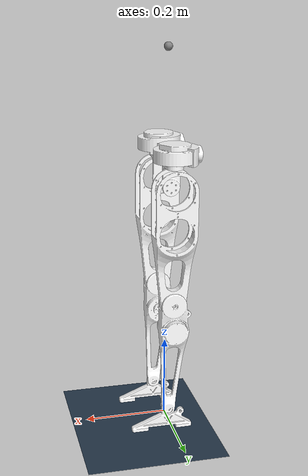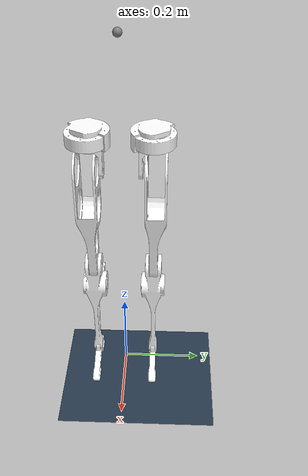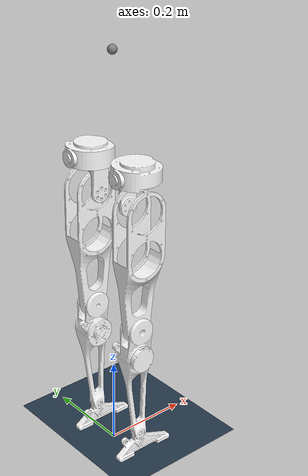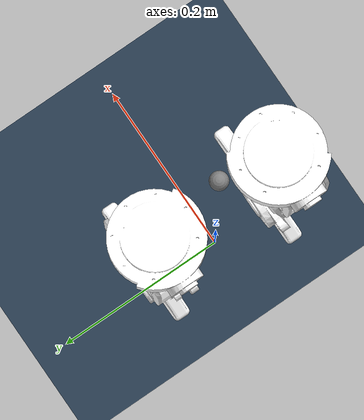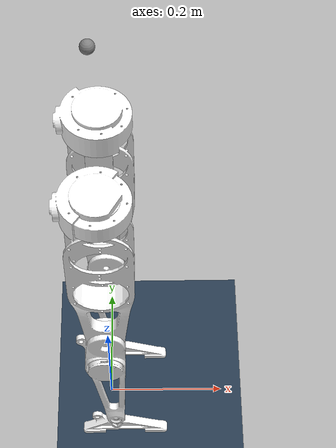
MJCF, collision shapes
<mujoco model="wow">
    <compiler angle="radian" meshdir="../meshes_obj/" eulerseq="zyx"/>
    <option timestep='0.001' iterations='50' solver='PGS' gravity='0 0 -9.81'>
    <flag sensornoise="enable" frictionloss="enable"/>
    </option>
    <size njmax="500" nconmax="100" />

    <visual>
        <quality shadowsize='4096'/>
        <map znear='0.05'/>
    </visual>

        <default>
        <joint limited='true'/>
        <motor ctrllimited='true'/>
        <geom  condim='4' contype="1" conaffinity="15" solref='0.001 2' friction='0.9 0.2 0.2'/>
        <equality solref='0.001 2'/>
        <default class='visualgeom'>
            <geom material='visualgeom' condim='1' contype='0' conaffinity='0'/>
        </default>
        <default class='visualgeom2'>
            <geom material='visualgeom2' condim='1' contype='0' conaffinity='0'/>
        </default>
        <default class='obstacle'>
            <geom material='obstacle' condim='3' contype='1' conaffinity='15'/>
        </default>

        <default class='leg_joint_param'>
            <joint  damping="0.01" frictionloss="0.01" armature="0.01"/>
        </default>

    </default>

    <asset>

        <texture type="skybox" builtin="gradient" rgb1="0.3 0.5 0.7" rgb2="0 0 0" width="512" height="512"/>
        <texture name="texplane" type="2d" builtin="checker" rgb1=".2 .3 .4" rgb2=".1 0.15 0.2"
            width="512" height="512" mark="cross" markrgb=".8 .8 .8"/>
        <texture name="texplane2" type="2d" builtin="checker" rgb1="1 0.3137 0.1843" rgb2="0.0 0.30196 0.38039"
            width="512" height="512" mark="cross" markrgb=".8 .8 .8"/>

        <material name="matplane" reflectance="0." texture="texplane" texrepeat="1 1" texuniform="true"/>
        <material name="matplane2" reflectance="0.1" texture="texplane2" texrepeat="1 1" texuniform="true"/>

        <material name='obstacle'  rgba='0.9 0.6 0.2 1'/>
        <material name='visualgeom'  rgba='0.5 0.9 0.2 1'/>
        <material name='visualgeom2'  rgba='0.5 0.9 0.2 1'/>

        <mesh name="body" file="body.obj" />
        <mesh name="left_roll_Link" file="left_roll_Link.obj" />
        <mesh name="left_yaw_Link" file="left_yaw_Link.obj" />
        <mesh name="left_pitch_Link" file="left_pitch_Link.obj" />
        <mesh name="left_knee_Link" file="left_knee_Link.obj" />
        <mesh name="left_foot_Link" file="left_foot_Link.obj" />
        <mesh name="right_roll_Link" file="right_roll_Link.obj" />
        <mesh name="right_yaw_Link" file="right_yaw_Link.obj" />
        <mesh name="right_pitch_Link" file="right_pitch_Link.obj" />
        <mesh name="right_knee_Link" file="right_knee_Link.obj" />
        <mesh name="right_foot_Link" file="right_foot_Link.obj" />

        <hfield name='hf0' nrow='200' ncol='200' size="10 5 0.2 .1"/>
    </asset>
    <worldbody>

        <light directional="true" diffuse=".4 .4 .4" specular="0.1 0.1 0.1" pos="0 0 5.0" dir="0 0 -1" castshadow="false"/>
        <light directional="true" diffuse=".6 .6 .6" specular="0.2 0.2 0.2" pos="0 0 4" dir="0 0 -1"/>
        <geom name="ground" type="plane" size="0 0 1" pos="0.001 0 0" quat="1 0 0 0" material="matplane" condim="1" conaffinity='15'/>

        <body name="body" pos="0.0 0.0 0.912">
            <geom type="mesh" mesh="body" group="1" class="visualgeom"/>
            <inertial pos="-0.0062523 0.00010748 -0.039166" mass="8.46" diaginertia="0.26319860 0.14931203 0.14097779" />
            <joint type='slide' axis='1 0 0' limited='false' />
            <joint type='slide' axis='0 1 0' limited='false' />
            <joint type='slide' axis='0 0 1' limited='false' />
            <joint type='ball' limited='false' />
            <site name='imu' size='0.01' pos='0.0 0 0.0'/>

            <body name="left_roll_Link" pos="-0.05 0.075 -0.2289">
                <inertial pos="0.047592 -0.0022216 0.0025354" quat="0.0779809 0.695761 -0.0877911 0.70861" mass="0.705" diaginertia="0.00053124 0.00057449 0.00091320" />
                <joint name="left_roll_joint" pos="0 0 0 " axis="1 0 0" limited="true" range="-0.2 1.5" />
                <geom type="mesh" rgba="1 1 1 1" mesh="left_roll_Link" />
                <body name="left_yaw_Link" pos="0.052 0 -0.01735">
                    <inertial pos="-5.4658e-09 -0.019246 -0.027515" quat="0.689309 -0.157647 0.157647 0.689309" mass="0.097" diaginertia="0.00007712 0.00006715 0.00003376" />
                    <joint name="left_yaw_joint" pos="0 0 0 " axis="0 0 -1" limited="true" range="-0.7 0.7" />
                    <geom type="mesh" rgba="1 1 1 1" mesh="left_yaw_Link" />
                    <body name="left_pitch_Link" pos="0 -0.025 -0.0635">
                        <inertial pos="4.286e-05 0.028462 -0.080837" quat="0.687951 -0.00130246 0.0149468 0.725602" mass="2.72119" diaginertia="0.01937616 0.02055257 0.00236629" />
                        <joint name="left_pitch_joint" pos="0 0 0" axis="0 1 0" limited="true" range="-1.57 0.5" />
                        <geom type="mesh" rgba="1 1 1 1" mesh="left_pitch_Link" />
                        <body name="left_knee_Link" pos="0 0.0185 -0.275">
                            <inertial pos="-0.00042722 0.0043352 -0.080717" quat="0.518444 0.00626424 0.0187855 0.854882" mass="0.965" diaginertia="0.00462805 0.00472890 0.00045533" />
                            <joint name="left_knee_joint" pos="0 0 0" axis="0 1 0" limited="true" range="0 1.57" />
                            <geom type="mesh" rgba="1 1 1 1" mesh="left_knee_Link" />
                            <body name="left_foot_Link" pos="0.0084516 0.002 -0.27487">
                                <inertial pos="0.0089522 0.004767 -0.034577" quat="0.480126 0.516419 0.521169 0.480804" mass="0.12731" diaginertia="0.00003267 0.00023186 0.00020486" />
                                <joint name="left_foot_joint" pos="0 0 0" axis="0 1 0" limited="true" range="-0.6 0.6" />
                                <geom type="mesh" rgba="1 1 1 1" mesh="left_foot_Link" />
                            </body>
                        </body>
                    </body>
                </body>
            </body>
            <body name="right_roll_Link" pos="-0.05 -0.075 -0.2289">
                <inertial pos="0.047589 0.002217 0.0025116" quat="-0.0777388 0.695136 0.0877543 0.709255" mass="0.705" diaginertia="0.00053146 0.00057446 0.00091320" />
                <joint name="right_roll_joint" pos="0 0 0" axis="1 0 0" limited="true" range="-1.57 0.2" />
                <geom type="mesh" rgba="1 1 1 1" mesh="right_roll_Link" />
                <body name="right_yaw_Link" pos="0.052 0 -0.01735">
                    <inertial pos="5.4658e-09 0.019246 -0.027515" quat="0.689309 0.157647 -0.157647 0.689309" mass="0.097" diaginertia="0.00007712 0.00006715 0.00003376" />
                    <joint name="right_yaw_joint" pos="0 0 0" axis="0 0 -1" limited="true" range="-0.7 0.7" />
                    <geom type="mesh" rgba="1 1 1 1" mesh="right_yaw_Link" />
                    <body name="right_pitch_Link" pos="0 0.025 -0.0635">
                        <inertial pos="2.2137e-05 -0.028465 -0.080779" quat="0.729793 -0.00227177 0.0147077 0.683506" mass="2.72119" diaginertia="0.01938088 0.02055794 0.00236723" />
                        <joint name="right_pitch_joint" pos="0 0 0" axis="0 -1 0" limited="true" range="-1.57 0.5" />
                        <geom type="mesh" rgba="1 1 1 1" mesh="right_pitch_Link" />
                        <body name="right_knee_Link" pos="0 -0.0185 -0.275">
                            <inertial pos="-0.00042634 -0.0043353 -0.080717" quat="0.85577 0.0187791 0.00639247 0.516975" mass="0.965" diaginertia="0.00466994 0.00476936 0.00045693" />
                            <joint name="right_knee_joint" pos="0 0 0" axis="0 -1 0" limited="true" range="-1.57 0" />
                            <geom type="mesh" rgba="1 1 1 1" mesh="right_knee_Link" />
                            <body name="right_foot_Link" pos="0.0084515 -0.002 -0.27487">
                                <inertial pos="0.0089522 -0.004767 -0.034577" quat="0.480804 0.521169 0.516419 0.480126" mass="0.12731" diaginertia="0.00003267 0.00023186 0.00020486" />
                                <joint name="right_foot_joint" pos="0 0 0" axis="0 -1 0" limited="true" range="-0.6 0.6" />
                                <geom type="mesh" rgba="1 1 1 1" mesh="right_foot_Link" />
                            </body>
                        </body>
                    </body>
                </body>
            </body>
        </body>
    </worldbody>

    <actuator>
        <motor name="left_roll_joint" joint="left_roll_joint" gear="1" ctrllimited="true" ctrlrange="-36 36"/>
        <motor name="left_yaw_joint" joint="left_yaw_joint" gear="1" ctrllimited="true" ctrlrange="-36 36"/>
        <motor name="left_pitch_joint" joint="left_pitch_joint" gear="1" ctrllimited="true" ctrlrange="-58 58"/>
        <motor name="left_knee_joint" joint="left_knee_joint" gear="1" ctrllimited="true" ctrlrange="-58 58"/>
        <motor name="left_foot_joint" joint="left_foot_joint" gear="1" ctrllimited="true" ctrlrange="-36 36"/>

        <motor name="right_roll_joint" joint="right_roll_joint" gear="1" ctrllimited="true" ctrlrange="-36 36"/>
        <motor name="right_yaw_joint" joint="right_yaw_joint" gear="1" ctrllimited="true" ctrlrange="-36 36"/>
        <motor name="right_pitch_joint" joint="right_pitch_joint" gear="1" ctrllimited="true" ctrlrange="-58 58"/>
        <motor name="right_knee_joint" joint="right_knee_joint" gear="1" ctrllimited="true" ctrlrange="-58 58"/>
        <motor name="right_foot_joint" joint="right_foot_joint" gear="1" ctrllimited="true" ctrlrange="-36 36"/>

    </actuator>

        <sensor>
            <actuatorpos name='left_roll_joint_p'  actuator='left_roll_joint' user='13'/>
            <actuatorpos name='left_yaw_joint_p'  actuator='left_yaw_joint' user='13'/>
            <actuatorpos name='left_pitch_joint_p'  actuator='left_pitch_joint' user='13'/>
            <actuatorpos name='left_knee_joint_p'  actuator='left_knee_joint' user='13'/>
            <actuatorpos name='left_foot_joint_p'  actuator='left_foot_joint' user='13'/>

            <actuatorpos name='right_roll_joint_p'  actuator='right_roll_joint' user='13'/>
            <actuatorpos name='right_yaw_joint_p'  actuator='right_yaw_joint' user='13'/>
            <actuatorpos name='right_pitch_joint_p'  actuator='right_pitch_joint' user='13'/>
            <actuatorpos name='right_knee_joint_p'  actuator='right_knee_joint' user='13'/>
            <actuatorpos name='right_foot_joint_p'  actuator='right_foot_joint' user='13'/>

            <actuatorvel name='left_roll_joint_v'  actuator='left_roll_joint' user='13'/>
            <actuatorvel name='left_yaw_joint_v'  actuator='left_yaw_joint' user='13'/>
            <actuatorvel name='left_pitch_joint_v'  actuator='left_pitch_joint' user='13'/>
            <actuatorvel name='left_knee_joint_v'  actuator='left_knee_joint' user='13'/>
            <actuatorvel name='left_foot_joint_v'  actuator='left_foot_joint' user='13'/>

            <actuatorvel name='right_roll_joint_v'  actuator='right_roll_joint' user='13'/>
            <actuatorvel name='right_yaw_joint_v'  actuator='right_yaw_joint' user='13'/>
            <actuatorvel name='right_pitch_joint_v'  actuator='right_pitch_joint' user='13'/>
            <actuatorvel name='right_knee_joint_v'  actuator='right_knee_joint' user='13'/>
            <actuatorvel name='right_foot_joint_v'  actuator='right_foot_joint' user='13'/>

            <actuatorfrc name='left_roll_joint_f'  actuator='left_roll_joint' user='13' noise='1e-3'/>
            <actuatorfrc name='left_yaw_joint_f'  actuator='left_yaw_joint' user='13' noise='1e-3'/>
            <actuatorfrc name='left_pitch_joint_f'  actuator='left_pitch_joint' user='13' noise='1e-3'/>
            <actuatorfrc name='left_knee_joint_f'  actuator='left_knee_joint' user='13' noise='1e-3'/>
            <actuatorfrc name='left_foot_joint_f'  actuator='left_foot_joint' user='13' noise='1e-3'/>

            <actuatorfrc name='right_roll_joint_f'  actuator='right_roll_joint' user='13' noise='1e-3'/>
            <actuatorfrc name='right_yaw_joint_f'  actuator='right_yaw_joint' user='13' noise='1e-3'/>
            <actuatorfrc name='right_pitch_joint_f'  actuator='right_pitch_joint' user='13' noise='1e-3'/>
            <actuatorfrc name='right_knee_joint_f'  actuator='right_knee_joint' user='13' noise='1e-3'/>
            <actuatorfrc name='right_foot_joint_f'  actuator='right_foot_joint' user='13' noise='1e-3'/>

            <framequat     name='orientation' objtype='site' noise='0.001' objname='imu'/>
            <framepos     name='position' objtype='site' noise='0.001' objname='imu'/>
            <gyro          name='angular-velocity'    site='imu' noise='0.005' cutoff='34.9'/>
            <velocimeter   name='linear-velocity'     site='imu' noise='0.001' cutoff='30'/>
            <accelerometer name='linear-acceleration' site='imu' noise='0.005' cutoff='157'/>
            <magnetometer  name='magnetometer'        site='imu'/>

    </sensor>
</mujoco>
